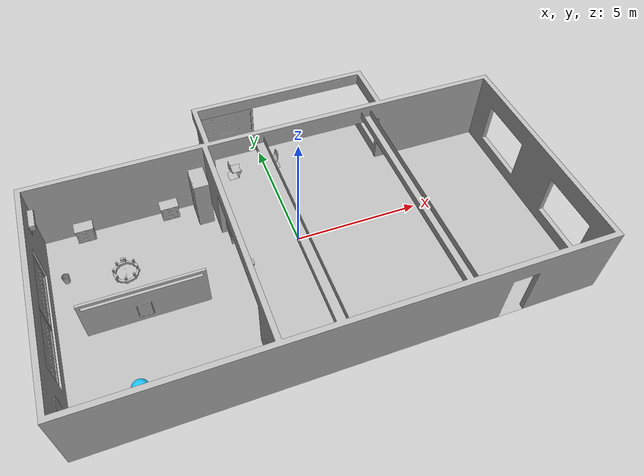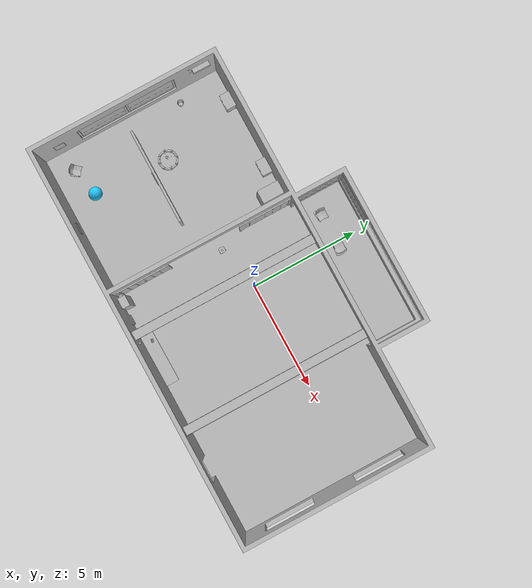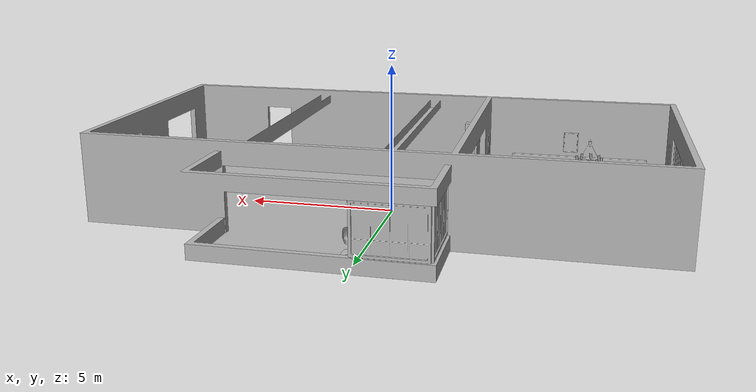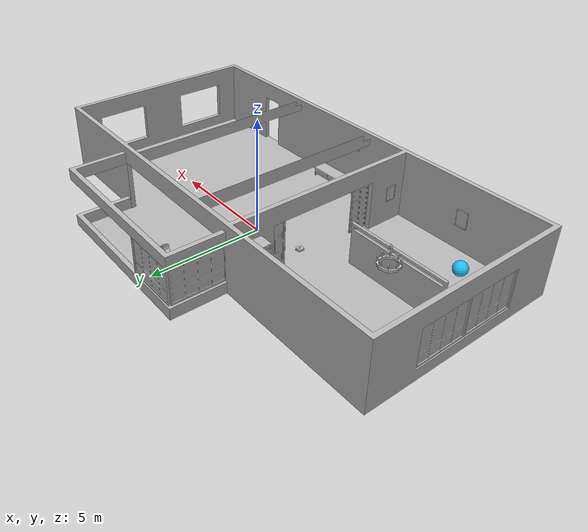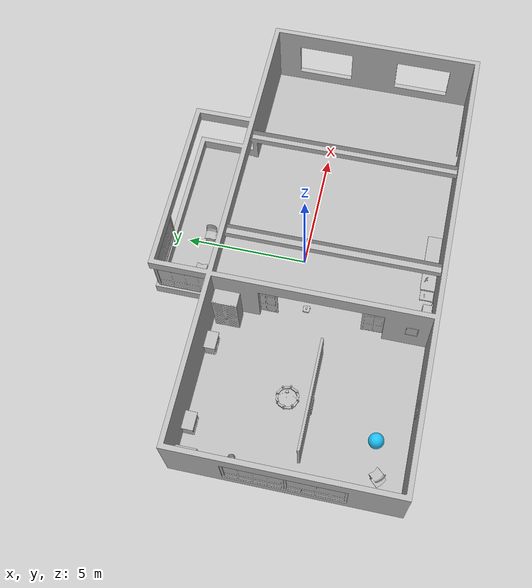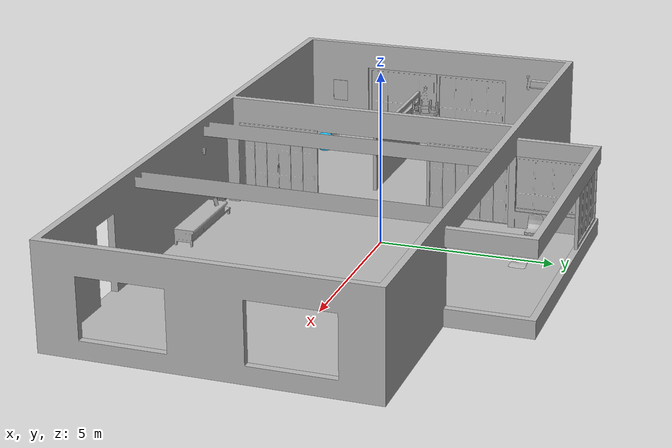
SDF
<sdf version="1.7">
 <world name="default">
  <model name="AirconditionerA_01_001">
   <static>1</static>
   <frame name="aws_robomaker_residential_AirconditionerA_01::__model__" attached_to="aws_robomaker_residential_AirconditionerA_01::link">
    <pose relative_to="__model__">0 0 0 0 -0 0</pose>
   </frame>
   <link name="aws_robomaker_residential_AirconditionerA_01::link">
    <inertial><mass>1</mass></inertial>
    <collision name="collision">
     <geometry>
      <mesh>
       <uri>model://aws_robomaker_residential_AirconditionerA_01/meshes/aws_AirconditionerA_01_collision.DAE</uri>
       <scale>1 1 1</scale>
      </mesh>
     </geometry>
    </collision>
    <visual name="visual">
     <geometry>
      <mesh>
       <uri>model://aws_robomaker_residential_AirconditionerA_01/meshes/aws_AirconditionerA_01_visual.DAE</uri>
      </mesh>
     </geometry>
     <meta><layer>1</layer></meta>
    </visual>
    <pose relative_to="aws_robomaker_residential_AirconditionerA_01::__model__">0 0 0 0 -0 0</pose>
   </link>
   <static>1</static>
   <pose>-9.19941 2.41123 2.08454 0 -0 0</pose>
  </model>
  <model name="AirconditionerB_01_001">
   <static>1</static>
   <frame name="aws_robomaker_residential_AirconditionerB_01::__model__" attached_to="aws_robomaker_residential_AirconditionerB_01::link">
    <pose relative_to="__model__">0 0 0 0 -0 0</pose>
   </frame>
   <link name="aws_robomaker_residential_AirconditionerB_01::link">
    <inertial><mass>1</mass></inertial>
    <collision name="collision">
     <geometry>
      <mesh>
       <uri>model://aws_robomaker_residential_AirconditionerB_01/meshes/aws_AirconditionerB_01_collision.DAE</uri>
       <scale>1 1 1</scale>
      </mesh>
     </geometry>
    </collision>
    <visual name="visual">
     <geometry>
      <mesh>
       <uri>model://aws_robomaker_residential_AirconditionerB_01/meshes/aws_AirconditionerB_01_visual.DAE</uri>
      </mesh>
     </geometry>
     <meta><layer>1</layer></meta>
    </visual>
    <pose relative_to="aws_robomaker_residential_AirconditionerB_01::__model__">0 0 0 0 -0 0</pose>
   </link>
   <pose>-2.00466 -5.22661 0.003485 0 -0 0</pose>
  </model>
  <model name="Ball_01_003">
   <static>1</static>
   <frame name="aws_robomaker_residential_Ball_01::__model__" attached_to="aws_robomaker_residential_Ball_01::link">
    <pose relative_to="__model__">0 0 0 0 -0 0</pose>
   </frame>
   <link name="aws_robomaker_residential_Ball_01::link">
    <inertial>
     <mass>0.12</mass>
     <inertia>
      <ixx>0.030752</ixx>
      <ixy>0</ixy>
      <ixz>0</ixz>
      <iyy>0.030752</iyy>
      <iyz>0</iyz>
      <izz>0.030752</izz>
     </inertia>
    </inertial>
    <collision name="collision">
     <geometry><sphere><radius>0.31</radius></sphere></geometry>
     <surface>
      <friction><ode><mu>0.85</mu><mu2>0.85</mu2></ode></friction>
      <contact><ode><kd>8500</kd><max_vel>5.1</max_vel></ode></contact>
     </surface>
    </collision>
    <visual name="visual">
     <geometry><sphere><radius>0.31</radius></sphere></geometry>
     <material><diffuse>0.12 0.76 0.97 1</diffuse><ambient>0.03 0.21 0.27 1</ambient></material>
     <meta><layer>1</layer></meta>
    </visual>
    <pose relative_to="aws_robomaker_residential_Ball_01::__model__">0 0 0 0 -0 0</pose>
   </link>
   <pose>-6.9455 -4.22174 0.318684 0 -0 0</pose>
  </model>
  <model name="NightStand_01_001">
   <static>1</static>
   <frame name="aws_robomaker_residential_NightStand_01::__model__" attached_to="aws_robomaker_residential_NightStand_01::link">
    <pose relative_to="__model__">0 0 0 0 -0 0</pose>
   </frame>
   <link name="aws_robomaker_residential_NightStand_01::link">
    <inertial>
     <mass>13.6</mass>
     <inertia><ixx>0.6165</ixx><ixy>0</ixy><ixz>0</ixz><iyy>1.29664</iyy><iyz>0</iyz><izz>0.7706</izz></inertia>
    </inertial>
    <collision name="collision">
     <geometry>
      <mesh>
       <uri>model://aws_robomaker_residential_NightStand_01/meshes/aws_NightStand_01_collision.DAE</uri>
       <scale>1 1 1</scale>
      </mesh>
     </geometry>
    </collision>
    <visual name="visual">
     <geometry>
      <mesh><uri>model://aws_robomaker_residential_NightStand_01/meshes/aws_NightStand_01_visual.DAE</uri></mesh>
     </geometry>
     <meta><layer>1</layer></meta>
    </visual>
    <pose relative_to="aws_robomaker_residential_NightStand_01::__model__">0 0 0 0 -0 0</pose>
   </link>
   <static>1</static>
   <pose>-7.72551 2.86042 0.005258 -2e-06 0 0</pose>
  </model>
  <model name="NightStand_01_002">
   <static>1</static>
   <frame name="aws_robomaker_residential_NightStand_01::__model__" attached_to="aws_robomaker_residential_NightStand_01::link">
    <pose relative_to="__model__">0 0 0 0 -0 0</pose>
   </frame>
   <link name="aws_robomaker_residential_NightStand_01::link">
    <inertial>
     <mass>13.6</mass>
     <inertia><ixx>0.6165</ixx><ixy>0</ixy><ixz>0</ixz><iyy>1.29664</iyy><iyz>0</iyz><izz>0.7706</izz></inertia>
    </inertial>
    <collision name="collision">
     <geometry>
      <mesh>
       <uri>model://aws_robomaker_residential_NightStand_01/meshes/aws_NightStand_01_collision.DAE</uri>
       <scale>1 1 1</scale>
      </mesh>
     </geometry>
    </collision>
    <visual name="visual">
     <geometry>
      <mesh><uri>model://aws_robomaker_residential_NightStand_01/meshes/aws_NightStand_01_visual.DAE</uri></mesh>
     </geometry>
     <meta><layer>1</layer></meta>
    </visual>
    <pose relative_to="aws_robomaker_residential_NightStand_01::__model__">0 0 0 0 -0 0</pose>
   </link>
   <static>1</static>
   <pose>-4.40734 2.86042 0.005256 0 2e-06 0</pose>
  </model>
  <model name="ChairD_01_001">
   <static>1</static>
   <frame name="aws_robomaker_residential_ChairD_01::__model__" attached_to="aws_robomaker_residential_ChairD_01::link">
    <pose relative_to="__model__">0 0 0 0 -0 0</pose>
   </frame>
   <link name="aws_robomaker_residential_ChairD_01::link">
    <inertial>
     <mass>4.5</mass>
     <inertia><ixy>0</ixy><ixz>0</ixz><iyz>0</iyz><ixx>0.217</ixx><iyy>0.217</iyy><izz>0.067</izz></inertia>
    </inertial>
    <collision name="collision">
     <geometry>
      <mesh>
       <uri>model://aws_robomaker_residential_ChairD_01/meshes/aws_ChairD_01_collision.DAE</uri>
       <scale>1 1 1</scale>
      </mesh>
     </geometry>
    </collision>
    <visual name="visual">
     <geometry>
      <mesh><uri>model://aws_robomaker_residential_ChairD_01/meshes/aws_ChairD_01_visual.DAE</uri></mesh>
     </geometry>
     <meta><layer>1</layer></meta>
    </visual>
    <pose relative_to="aws_robomaker_residential_ChairD_01::__model__">0 0 0 0 -0 0</pose>
   </link>
   <pose>-1.38078 4.10446 0 0 -0 0</pose>
  </model>
  <model name="ChairD_01_002">
   <static>1</static>
   <frame name="aws_robomaker_residential_ChairD_01::__model__" attached_to="aws_robomaker_residential_ChairD_01::link">
    <pose relative_to="__model__">0 0 0 0 -0 0</pose>
   </frame>
   <link name="aws_robomaker_residential_ChairD_01::link">
    <inertial>
     <mass>4.5</mass>
     <inertia><ixy>0</ixy><ixz>0</ixz><iyz>0</iyz><ixx>0.217</ixx><iyy>0.217</iyy><izz>0.067</izz></inertia>
    </inertial>
    <collision name="collision">
     <geometry>
      <mesh>
       <uri>model://aws_robomaker_residential_ChairD_01/meshes/aws_ChairD_01_collision.DAE</uri>
       <scale>1 1 1</scale>
      </mesh>
     </geometry>
    </collision>
    <visual name="visual">
     <geometry>
      <mesh><uri>model://aws_robomaker_residential_ChairD_01/meshes/aws_ChairD_01_visual.DAE</uri></mesh>
     </geometry>
     <meta><layer>1</layer></meta>
    </visual>
    <pose relative_to="aws_robomaker_residential_ChairD_01::__model__">0 0 0 0 -0 0</pose>
   </link>
   <pose>0.325214 4.10446 0 0 0 -3.13874</pose>
  </model>
  <model name="ChairD_01_003">
   <static>1</static>
   <frame name="aws_robomaker_residential_ChairD_01::__model__" attached_to="aws_robomaker_residential_ChairD_01::link">
    <pose relative_to="__model__">0 0 0 0 -0 0</pose>
   </frame>
   <link name="aws_robomaker_residential_ChairD_01::link">
    <inertial>
     <mass>4.5</mass>
     <inertia><ixy>0</ixy><ixz>0</ixz><iyz>0</iyz><ixx>0.217</ixx><iyy>0.217</iyy><izz>0.067</izz></inertia>
    </inertial>
    <collision name="collision">
     <geometry>
      <mesh>
       <uri>model://aws_robomaker_residential_ChairD_01/meshes/aws_ChairD_01_collision.DAE</uri>
       <scale>1 1 1</scale>
      </mesh>
     </geometry>
    </collision>
    <visual name="visual">
     <geometry>
      <mesh><uri>model://aws_robomaker_residential_ChairD_01/meshes/aws_ChairD_01_visual.DAE</uri></mesh>
     </geometry>
     <meta><layer>1</layer></meta>
    </visual>
    <pose relative_to="aws_robomaker_residential_ChairD_01::__model__">0 0 0 0 -0 0</pose>
   </link>
   <pose>-8.27078 -4.50446 0 0 -0 0.869673</pose>
  </model>
  <model name="Chandelier_01_002">
   <static>1</static>
   <frame name="aws_robomaker_residential_Chandelier_01::__model__" attached_to="aws_robomaker_residential_Chandelier_01::link">
    <pose relative_to="__model__">0 0 0 0 -0 0</pose>
   </frame>
   <link name="aws_robomaker_residential_Chandelier_01::link">
    <inertial><mass>1</mass></inertial>
    <collision name="collision">
     <geometry>
      <mesh>
       <uri>model://aws_robomaker_residential_Chandelier_01/meshes/aws_Chandelier_01_collision.DAE</uri>
       <scale>1 1 1</scale>
      </mesh>
     </geometry>
    </collision>
    <visual name="visual">
     <geometry>
      <mesh><uri>model://aws_robomaker_residential_Chandelier_01/meshes/aws_Chandelier_01_visual.DAE</uri></mesh>
     </geometry>
     <meta><layer>2</layer></meta>
    </visual>
    <pose relative_to="aws_robomaker_residential_Chandelier_01::__model__">0 0 0 0 -0 0</pose>
   </link>
   <static>1</static>
   <pose>-6.45106 -0.69204 1.81 0 -0 0</pose>
  </model>
  <model name="FoldingDoor_01_001">
   <static>1</static>
   <frame name="aws_robomaker_residential_FoldingDoor_01::__model__" attached_to="aws_robomaker_residential_FoldingDoor_01::link">
    <pose relative_to="__model__">0 0 0 0 -0 0</pose>
   </frame>
   <link name="aws_robomaker_residential_FoldingDoor_01::link">
    <inertial><mass>1</mass></inertial>
    <collision name="collision">
     <geometry>
      <mesh>
       <uri>model://aws_robomaker_residential_FoldingDoor_01/meshes/aws_FoldingDoor_01_collision.DAE</uri>
       <scale>1 1 1</scale>
      </mesh>
     </geometry>
    </collision>
    <visual name="visual">
     <geometry>
      <mesh><uri>model://aws_robomaker_residential_FoldingDoor_01/meshes/aws_FoldingDoor_01_visual.DAE</uri></mesh>
     </geometry>
     <meta><layer>2</layer></meta>
    </visual>
    <pose relative_to="aws_robomaker_residential_FoldingDoor_01::__model__">0 0 0 0 -0 0</pose>
   </link>
   <static>1</static>
   <pose>-2.4611 1.84422 0.041881 0 -0 0</pose>
  </model>
  <model name="FoldingDoor_01_002">
   <static>1</static>
   <frame name="aws_robomaker_residential_FoldingDoor_01::__model__" attached_to="aws_robomaker_residential_FoldingDoor_01::link">
    <pose relative_to="__model__">0 0 0 0 -0 0</pose>
   </frame>
   <link name="aws_robomaker_residential_FoldingDoor_01::link">
    <inertial><mass>1</mass></inertial>
    <collision name="collision">
     <geometry>
      <mesh>
       <uri>model://aws_robomaker_residential_FoldingDoor_01/meshes/aws_FoldingDoor_01_collision.DAE</uri>
       <scale>1 1 1</scale>
      </mesh>
     </geometry>
    </collision>
    <visual name="visual">
     <geometry>
      <mesh><uri>model://aws_robomaker_residential_FoldingDoor_01/meshes/aws_FoldingDoor_01_visual.DAE</uri></mesh>
     </geometry>
     <meta><layer>2</layer></meta>
    </visual>
    <pose relative_to="aws_robomaker_residential_FoldingDoor_01::__model__">0 0 0 0 -0 0</pose>
   </link>
   <static>1</static>
   <pose>-2.4611 -4.05332 0.041881 0 -0 0</pose>
  </model>
  <model name="HouseWallB_01_001">
   <static>1</static>
   <frame name="aws_robomaker_residential_HouseWallB_01::__model__" attached_to="aws_robomaker_residential_HouseWallB_01::link">
    <pose relative_to="__model__">0 0 0 0 -0 0</pose>
   </frame>
   <link name="aws_robomaker_residential_HouseWallB_01::link">
    <inertial><mass>1</mass></inertial>
    <collision name="collision">
     <geometry>
      <mesh>
       <uri>model://aws_robomaker_residential_HouseWallB_01/meshes/aws_HouseWallB_01_collision.DAE</uri>
       <scale>1 1 1</scale>
      </mesh>
     </geometry>
    </collision>
    <visual name="visual">
     <geometry>
      <mesh><uri>model://aws_robomaker_residential_HouseWallB_01/meshes/aws_HouseWallB_01_visual.DAE</uri></mesh>
     </geometry>
     <meta><layer>2</layer></meta>
    </visual>
    <pose relative_to="aws_robomaker_residential_HouseWallB_01::__model__">0 0 0 0 -0 0</pose>
   </link>
   <static>1</static>
  </model>
  <model name="FloorB_01_001">
   <static>1</static>
   <frame name="aws_robomaker_residential_FloorB_01::__model__" attached_to="aws_robomaker_residential_FloorB_01::link">
    <pose relative_to="__model__">0 0 0 0 -0 0</pose>
   </frame>
   <link name="aws_robomaker_residential_FloorB_01::link">
    <inertial><mass>100</mass></inertial>
    <collision name="collision">
     <geometry>
      <mesh>
       <uri>model://aws_robomaker_residential_FloorB_01/meshes/aws_FloorB_01_collision.DAE</uri>
       <scale>1 1 0.9</scale>
      </mesh>
     </geometry>
     <surface><friction><ode><mu>100</mu><mu2>50</mu2></ode></friction></surface>
    </collision>
    <visual name="visual">
     <geometry>
      <mesh><uri>model://aws_robomaker_residential_FloorB_01/meshes/aws_FloorB_01_visual.DAE</uri></mesh>
     </geometry>
     <meta><layer>1</layer></meta>
    </visual>
    <pose relative_to="aws_robomaker_residential_FloorB_01::__model__">0 0 0 0 -0 0</pose>
   </link>
   <static>1</static>
  </model>
  <model name="LightC_01_002">
   <static>1</static>
   <frame name="aws_robomaker_residential_LightC_01::__model__" attached_to="aws_robomaker_residential_LightC_01::link">
    <pose relative_to="__model__">0 0 0 0 -0 0</pose>
   </frame>
   <link name="aws_robomaker_residential_LightC_01::link">
    <inertial><mass>1</mass></inertial>
    <collision name="collision">
     <geometry>
      <mesh>
       <uri>model://aws_robomaker_residential_LightC_01/meshes/aws_LightC_01_collision.DAE</uri>
       <scale>1 1 1</scale>
      </mesh>
     </geometry>
    </collision>
    <visual name="visual">
     <geometry>
      <mesh><uri>model://aws_robomaker_residential_LightC_01/meshes/aws_LightC_01_visual.DAE</uri></mesh>
     </geometry>
     <meta><layer>2</layer></meta>
    </visual>
    <pose relative_to="aws_robomaker_residential_LightC_01::__model__">0 0 0 0 -0 0</pose>
   </link>
   <static>1</static>
   <pose>-0.138245 -5.44437 2 0 -0 0</pose>
  </model>
  <model name="PortraitA_01">
   <static>1</static>
   <frame name="aws_robomaker_residential_PortraitA_01::__model__" attached_to="aws_robomaker_residential_PortraitA_01::link">
    <pose relative_to="__model__">0 0 0 0 -0 0</pose>
   </frame>
   <link name="aws_robomaker_residential_PortraitA_01::link">
    <inertial><mass>1</mass></inertial>
    <collision name="collision">
     <geometry>
      <mesh>
       <uri>model://aws_robomaker_residential_PortraitA_01/meshes/aws_PortraitA_01_collision.DAE</uri>
       <scale>1 1 1</scale>
      </mesh>
     </geometry>
    </collision>
    <visual name="visual">
     <geometry>
      <mesh><uri>model://aws_robomaker_residential_PortraitA_01/meshes/aws_PortraitA_01_visual.DAE</uri></mesh>
     </geometry>
     <meta><layer>2</layer></meta>
    </visual>
    <pose relative_to="aws_robomaker_residential_PortraitA_01::__model__">0 0 0 0 -0 0</pose>
   </link>
   <static>1</static>
   <pose>-2.71236 -4.81754 1 0 -0 1.5668</pose>
  </model>
  <model name="PortraitB_01">
   <static>1</static>
   <frame name="aws_robomaker_residential_PortraitB_01::__model__" attached_to="aws_robomaker_residential_PortraitB_01::link">
    <pose relative_to="__model__">0 0 0 0 -0 0</pose>
   </frame>
   <link name="aws_robomaker_residential_PortraitB_01::link">
    <inertial><mass>1</mass></inertial>
    <collision name="collision">
     <geometry>
      <mesh>
       <uri>model://aws_robomaker_residential_PortraitB_01/meshes/aws_PortraitB_01_collision.DAE</uri>
       <scale>1 1 1</scale>
      </mesh>
     </geometry>
    </collision>
    <visual name="visual">
     <geometry>
      <mesh><uri>model://aws_robomaker_residential_PortraitB_01/meshes/aws_PortraitB_01_visual.DAE</uri></mesh>
     </geometry>
     <meta><layer>2</layer></meta>
    </visual>
    <pose relative_to="aws_robomaker_residential_PortraitB_01::__model__">0 0 0 0 -0 0</pose>
   </link>
   <static>1</static>
   <pose>-1.27968 -5.42963 0 -0.076901 0 -3.11672</pose>
  </model>
  <model name="PortraitC_01">
   <static>1</static>
   <frame name="aws_robomaker_residential_PortraitC_01::__model__" attached_to="aws_robomaker_residential_PortraitC_01::link">
    <pose relative_to="__model__">0 0 0 0 -0 0</pose>
   </frame>
   <link name="aws_robomaker_residential_PortraitC_01::link">
    <inertial><mass>1</mass></inertial>
    <collision name="collision">
     <geometry>
      <mesh>
       <uri>model://aws_robomaker_residential_PortraitC_01/meshes/aws_PortraitC_01_collision.DAE</uri>
       <scale>1 1 1</scale>
      </mesh>
     </geometry>
    </collision>
    <visual name="visual">
     <geometry>
      <mesh><uri>model://aws_robomaker_residential_PortraitC_01/meshes/aws_PortraitC_01_visual.DAE</uri></mesh>
     </geometry>
     <meta><layer>2</layer></meta>
    </visual>
    <pose relative_to="aws_robomaker_residential_PortraitC_01::__model__">0 0 0 0 -0 0</pose>
   </link>
   <static>1</static>
   <pose>-9.2949 -4.52608 1 0 -0 1.55473</pose>
  </model>
  <model name="PortraitE_01">
   <static>1</static>
   <frame name="aws_robomaker_residential_PortraitE_01::__model__" attached_to="aws_robomaker_residential_PortraitE_01::link">
    <pose relative_to="__model__">0 0 0 0 -0 0</pose>
   </frame>
   <link name="aws_robomaker_residential_PortraitE_01::link">
    <inertial><mass>1</mass></inertial>
    <collision name="collision">
     <geometry>
      <mesh>
       <uri>model://aws_robomaker_residential_PortraitE_01/meshes/aws_PortraitE_01_collision.DAE</uri>
       <scale>1 1 1</scale>
      </mesh>
     </geometry>
    </collision>
    <visual name="visual">
     <geometry>
      <mesh><uri>model://aws_robomaker_residential_PortraitE_01/meshes/aws_PortraitE_01_visual.DAE</uri></mesh>
     </geometry>
     <meta><layer>2</layer></meta>
    </visual>
    <pose relative_to="aws_robomaker_residential_PortraitE_01::__model__">0 0 0 0 -0 0</pose>
   </link>
   <static>1</static>
   <pose>-5.77309 -5.49247 1 0 -0 3.13263</pose>
  </model>
  <model name="PortraitE_02">
   <static>1</static>
   <frame name="aws_robomaker_residential_PortraitE_02::__model__" attached_to="aws_robomaker_residential_PortraitE_02::link">
    <pose relative_to="__model__">0 0 0 0 -0 0</pose>
   </frame>
   <link name="aws_robomaker_residential_PortraitE_02::link">
    <inertial><mass>1</mass></inertial>
    <collision name="collision">
     <geometry>
      <mesh>
       <uri>model://aws_robomaker_residential_PortraitE_02/meshes/aws_PortraitE_01_collision.DAE</uri>
       <scale>1 1 1</scale>
      </mesh>
     </geometry>
    </collision>
    <visual name="visual">
     <geometry>
      <mesh><uri>model://aws_robomaker_residential_PortraitE_02/meshes/aws_PortraitE_01_visual.DAE</uri></mesh>
     </geometry>
     <meta><layer>2</layer></meta>
    </visual>
    <pose relative_to="aws_robomaker_residential_PortraitE_02::__model__">0 0 0 0 -0 0</pose>
   </link>
   <static>1</static>
   <pose>-6.19302 -1.59021 0.3 0 -0 0.00429</pose>
  </model>
  <model name="DeskPortraitA_01">
   <static>1</static>
   <frame name="aws_robomaker_residential_DeskPortraitA_01::__model__" attached_to="aws_robomaker_residential_DeskPortraitA_01::link">
    <pose relative_to="__model__">0 0 0 0 -0 0</pose>
   </frame>
   <link name="aws_robomaker_residential_DeskPortraitA_01::link">
    <inertial>
     <mass>1</mass>
     <inertia><ixx>0.0835</ixx><ixy>0</ixy><ixz>0</ixz><iyy>0.16</iyy><iyz>0</iyz><izz>0.08347</izz></inertia>
    </inertial>
    <collision name="collision">
     <geometry>
      <mesh>
       <uri>model://aws_robomaker_residential_DeskPortraitA_01/meshes/aws_DeskPortraitA_01_collision.DAE</uri>
       <scale>1 1 1</scale>
      </mesh>
     </geometry>
    </collision>
    <visual name="visual">
     <geometry>
      <mesh>
       <uri>model://aws_robomaker_residential_DeskPortraitA_01/meshes/aws_DeskPortraitA_01_visual.DAE</uri>
      </mesh>
     </geometry>
     <meta><layer>1</layer></meta>
    </visual>
    <pose relative_to="aws_robomaker_residential_DeskPortraitA_01::__model__">0 0 0 0 -0 0</pose>
   </link>
   <pose>-0.036864 -5.11016 0.49866 0 -0 2.92778</pose>
  </model>
  <model name="DeskPortraitD_02">
   <static>1</static>
   <frame name="aws_robomaker_residential_DeskPortraitD_02::__model__" attached_to="aws_robomaker_residential_DeskPortraitD_02::link">
    <pose relative_to="__model__">0 0 0 0 -0 0</pose>
   </frame>
   <link name="aws_robomaker_residential_DeskPortraitD_02::link">
    <inertial>
     <mass>0.4</mass>
     <inertia><ixx>0.0616</ixx><ixy>0</ixy><ixz>0</ixz><iyy>0.1313</iyy><iyz>0</iyz><izz>0.0803</izz></inertia>
    </inertial>
    <collision name="collision">
     <geometry>
      <mesh>
       <uri>model://aws_robomaker_residential_DeskPortraitD_02/meshes/aws_DeskPortraitD_01_collision.DAE</uri>
       <scale>1 1 1</scale>
      </mesh>
     </geometry>
     <surface>
      <friction><ode><mu>0.7</mu><mu2>0.7</mu2></ode></friction>
      <contact><ode><kd>28500</kd></ode></contact>
     </surface>
    </collision>
    <visual name="visual">
     <geometry>
      <mesh>
       <uri>model://aws_robomaker_residential_DeskPortraitD_02/meshes/aws_DeskPortraitD_01_visual.DAE</uri>
      </mesh>
     </geometry>
     <meta><layer>1</layer></meta>
    </visual>
    <pose relative_to="aws_robomaker_residential_DeskPortraitD_02::__model__">0 0 0 0 -0 0</pose>
   </link>
   <pose>-0.589211 -5.10989 0.192145 -1.5e-05 -0.000174 -3.11254</pose>
  </model>
  <model name="Trash_01_002">
   <static>1</static>
   <frame name="aws_robomaker_residential_Trash_01::__model__" attached_to="aws_robomaker_residential_Trash_01::link">
    <pose relative_to="__model__">0 0 0 0 -0 0</pose>
   </frame>
   <link name="aws_robomaker_residential_Trash_01::link">
    <inertial>
     <mass>0.1</mass>
     <inertia><ixy>0</ixy><ixz>0</ixz><iyz>0</iyz><ixx>0.05288</ixx><iyy>0.05288</iyy><izz>0.09132</izz></inertia>
    </inertial>
    <collision name="collision">
     <geometry>
      <mesh>
       <uri>model://aws_robomaker_residential_Trash_01/meshes/aws_Trash_01_collision.DAE</uri>
       <scale>1 1 1</scale>
      </mesh>
     </geometry>
    </collision>
    <visual name="visual">
     <geometry>
      <mesh><uri>model://aws_robomaker_residential_Trash_01/meshes/aws_Trash_01_visual.DAE</uri></mesh>
     </geometry>
     <meta><layer>1</layer></meta>
    </visual>
    <pose relative_to="aws_robomaker_residential_Trash_01::__model__">0 0 0 0 -0 0</pose>
   </link>
   <pose>-8.70415 1.00058 0.011 0 -0 0</pose>
  </model>
  <model name="TVCabinet_01_001">
   <static>1</static>
   <frame name="aws_robomaker_residential_TVCabinet_01::__model__" attached_to="aws_robomaker_residential_TVCabinet_01::link">
    <pose relative_to="__model__">0 0 0 0 -0 0</pose>
   </frame>
   <link name="aws_robomaker_residential_TVCabinet_01::link">
    <inertial>
     <mass>59.2</mass>
     <inertia><ixx>30.4</ixx><ixy>0</ixy><ixz>0</ixz><iyy>2.56</iyy><iyz>0</iyz><izz>31.38</izz></inertia>
    </inertial>
    <collision name="collision">
     <geometry>
      <mesh>
       <uri>model://aws_robomaker_residential_TVCabinet_01/meshes/aws_TVCabinet_01_collision.DAE</uri>
       <scale>1 1 1</scale>
      </mesh>
     </geometry>
    </collision>
    <visual name="visual">
     <geometry>
      <mesh><uri>model://aws_robomaker_residential_TVCabinet_01/meshes/aws_TVCabinet_01_visual.DAE</uri></mesh>
     </geometry>
     <meta><layer>1</layer></meta>
    </visual>
    <pose relative_to="aws_robomaker_residential_TVCabinet_01::__model__">0 0 0 0 -0 0</pose>
   </link>
   <static>1</static>
   <pose>0.629509 -5.18358 -0.017049 0 -0 1.5792</pose>
  </model>
  <model name="RoomWall_01_001">
   <static>1</static>
   <frame name="aws_robomaker_residential_RoomWall_01::__model__" attached_to="aws_robomaker_residential_RoomWall_01::link">
    <pose relative_to="__model__">0 0 0 0 -0 0</pose>
   </frame>
   <link name="aws_robomaker_residential_RoomWall_01::link">
    <inertial><mass>100</mass></inertial>
    <collision name="collision">
     <geometry>
      <mesh>
       <uri>model://aws_robomaker_residential_RoomWall_01/meshes/aws_RoomWall_01_collision.DAE</uri>
       <scale>1 1 1</scale>
      </mesh>
     </geometry>
    </collision>
    <visual name="visual">
     <geometry>
      <mesh><uri>model://aws_robomaker_residential_RoomWall_01/meshes/aws_RoomWall_01_visual.DAE</uri></mesh>
     </geometry>
     <meta><layer>2</layer></meta>
    </visual>
    <pose relative_to="aws_robomaker_residential_RoomWall_01::__model__">0 0 0 0 -0 0</pose>
   </link>
   <static>1</static>
   <pose>-6.09755 -1.49618 0.028124 0 -0 0</pose>
  </model>
  <model name="Wardrobe_01_001">
   <static>1</static>
   <frame name="aws_robomaker_residential_Wardrobe_01::__model__" attached_to="aws_robomaker_residential_Wardrobe_01::link">
    <pose relative_to="__model__">0 0 0 0 -0 0</pose>
   </frame>
   <link name="aws_robomaker_residential_Wardrobe_01::link">
    <inertial><mass>51.7</mass></inertial>
    <collision name="collision">
     <geometry>
      <mesh>
       <uri>model://aws_robomaker_residential_Wardrobe_01/meshes/aws_Wardrobe_01_collision.DAE</uri>
       <scale>1 1 1</scale>
      </mesh>
     </geometry>
    </collision>
    <visual name="visual">
     <geometry>
      <mesh><uri>model://aws_robomaker_residential_Wardrobe_01/meshes/aws_Wardrobe_01_visual.DAE</uri></mesh>
     </geometry>
     <meta><layer>1</layer></meta>
    </visual>
    <pose relative_to="aws_robomaker_residential_Wardrobe_01::__model__">0 0 0 0 -0 0</pose>
   </link>
   <static>1</static>
   <pose>-3.14671 2.4762 0.000704 0 0 -1.56967</pose>
  </model>
  <model name="RoomWindow_01_001">
   <static>1</static>
   <frame name="aws_robomaker_residential_RoomWindow_01::__model__" attached_to="aws_robomaker_residential_RoomWindow_01::link">
    <pose relative_to="__model__">0 0 0 0 -0 0</pose>
   </frame>
   <link name="aws_robomaker_residential_RoomWindow_01::link">
    <inertial><mass>1</mass></inertial>
    <collision name="collision">
     <geometry>
      <mesh>
       <uri>model://aws_robomaker_residential_RoomWindow_01/meshes/aws_RoomWindow_01_collision.DAE</uri>
       <scale>1 1 1</scale>
      </mesh>
     </geometry>
    </collision>
    <visual name="visual">
     <geometry>
      <mesh><uri>model://aws_robomaker_residential_RoomWindow_01/meshes/aws_RoomWindow_01_visual.DAE</uri></mesh>
     </geometry>
     <meta><layer>2</layer></meta>
    </visual>
    <pose relative_to="aws_robomaker_residential_RoomWindow_01::__model__">0 0 0 0 -0 0</pose>
   </link>
   <static>1</static>
   <pose>-9.4186 -0.026285 0.502739 0 -0 0</pose>
  </model>
  <model name="RoomWindow_01_002">
   <static>1</static>
   <frame name="aws_robomaker_residential_RoomWindow_01::__model__" attached_to="aws_robomaker_residential_RoomWindow_01::link">
    <pose relative_to="__model__">0 0 0 0 -0 0</pose>
   </frame>
   <link name="aws_robomaker_residential_RoomWindow_01::link">
    <inertial><mass>1</mass></inertial>
    <collision name="collision">
     <geometry>
      <mesh>
       <uri>model://aws_robomaker_residential_RoomWindow_01/meshes/aws_RoomWindow_01_collision.DAE</uri>
       <scale>1 1 1</scale>
      </mesh>
     </geometry>
    </collision>
    <visual name="visual">
     <geometry>
      <mesh><uri>model://aws_robomaker_residential_RoomWindow_01/meshes/aws_RoomWindow_01_visual.DAE</uri></mesh>
     </geometry>
     <meta><layer>2</layer></meta>
    </visual>
    <pose relative_to="aws_robomaker_residential_RoomWindow_01::__model__">0 0 0 0 -0 0</pose>
   </link>
   <static>1</static>
   <pose>-9.4186 -2.37409 0.502739 0 -0 0</pose>
  </model>
  <model name="RoomWindow_01_008">
   <static>1</static>
   <frame name="aws_robomaker_residential_RoomWindow_01::__model__" attached_to="aws_robomaker_residential_RoomWindow_01::link">
    <pose relative_to="__model__">0 0 0 0 -0 0</pose>
   </frame>
   <link name="aws_robomaker_residential_RoomWindow_01::link">
    <inertial><mass>1</mass></inertial>
    <collision name="collision">
     <geometry>
      <mesh>
       <uri>model://aws_robomaker_residential_RoomWindow_01/meshes/aws_RoomWindow_01_collision.DAE</uri>
       <scale>1 1 1</scale>
      </mesh>
     </geometry>
    </collision>
    <visual name="visual">
     <geometry>
      <mesh><uri>model://aws_robomaker_residential_RoomWindow_01/meshes/aws_RoomWindow_01_visual.DAE</uri></mesh>
     </geometry>
     <meta><layer>2</layer></meta>
    </visual>
    <pose relative_to="aws_robomaker_residential_RoomWindow_01::__model__">0 0 0 0 -0 0</pose>
   </link>
   <static>1</static>
   <pose>-1.19934 5.60069 0.502739 0 0 -1.56627</pose>
  </model>
  <model name="RoomWindow_01_009">
   <static>1</static>
   <frame name="aws_robomaker_residential_RoomWindow_01::__model__" attached_to="aws_robomaker_residential_RoomWindow_01::link">
    <pose relative_to="__model__">0 0 0 0 -0 0</pose>
   </frame>
   <link name="aws_robomaker_residential_RoomWindow_01::link">
    <inertial><mass>1</mass></inertial>
    <collision name="collision">
     <geometry>
      <mesh>
       <uri>model://aws_robomaker_residential_RoomWindow_01/meshes/aws_RoomWindow_01_collision.DAE</uri>
       <scale>1 1 1</scale>
      </mesh>
     </geometry>
    </collision>
    <visual name="visual">
     <geometry>
      <mesh><uri>model://aws_robomaker_residential_RoomWindow_01/meshes/aws_RoomWindow_01_visual.DAE</uri></mesh>
     </geometry>
     <meta><layer>2</layer></meta>
    </visual>
    <pose relative_to="aws_robomaker_residential_RoomWindow_01::__model__">0 0 0 0 -0 0</pose>
   </link>
   <static>1</static>
   <pose>-2.39662 4.38761 0.502739 0 -0 0</pose>
  </model>
  <model name="waffle_pi">
   <pose>-2.03293 -0.500004 0.007894 7e-06 0.006289 0.00117</pose>
   <link name="base_footprint">
    <inertial>
     <inertia><ixx>1</ixx><ixy>0</ixy><ixz>0</ixz><iyy>1</iyy><iyz>0</iyz><izz>1</izz></inertia>
     <mass>1</mass>
    </inertial>
   </link>
   <link name="base_link">
    <inertial>
     <pose>-0.064 0 0.048 0 -0 0</pose>
     <inertia>
      <ixx>0.0421114</ixx>
      <ixy>0</ixy>
      <ixz>0</ixz>
      <iyy>0.0421114</iyy>
      <iyz>0</iyz>
      <izz>0.0752549</izz>
     </inertia>
     <mass>1.37291</mass>
    </inertial>
    <collision name="base_collision">
     <pose>-0.064 0 0.048 0 -0 0</pose>
     <geometry><box><size>0.265 0.265 0.089</size></box></geometry>
    </collision>
    <visual name="base_visual">
     <pose>-0.064 0 0 0 -0 0</pose>
     <geometry>
      <mesh><uri>model://turtlebot3_common/meshes/waffle_pi_base.dae</uri><scale>0.001 0.001 0.001</scale></mesh>
     </geometry>
    </visual>
   </link>
   <link name="imu_link">
    <sensor name="tb3_imu" type="imu">
     <always_on>1</always_on>
     <update_rate>200</update_rate>
     <imu>
      <angular_velocity>
       <x><noise type="gaussian"><mean>0</mean><stddev>0.0002</stddev></noise></x>
       <y><noise type="gaussian"><mean>0</mean><stddev>0.0002</stddev></noise></y>
       <z><noise type="gaussian"><mean>0</mean><stddev>0.0002</stddev></noise></z>
      </angular_velocity>
      <linear_acceleration>
       <x><noise type="gaussian"><mean>0</mean><stddev>0.017</stddev></noise></x>
       <y><noise type="gaussian"><mean>0</mean><stddev>0.017</stddev></noise></y>
       <z><noise type="gaussian"><mean>0</mean><stddev>0.017</stddev></noise></z>
      </linear_acceleration>
     </imu>
     <plugin name="turtlebot3_imu" filename="libgazebo_ros_imu_sensor.so">
      <ros><remapping>~/out:=imu</remapping></ros>
     </plugin>
    </sensor>
    <inertial>
     <inertia><ixx>1</ixx><ixy>0</ixy><ixz>0</ixz><iyy>1</iyy><iyz>0</iyz><izz>1</izz></inertia>
     <mass>1</mass>
    </inertial>
   </link>
   <link name="base_scan">
    <inertial>
     <pose>-0.052 0 0.111 0 -0 0</pose>
     <inertia><ixx>0.001</ixx><ixy>0</ixy><ixz>0</ixz><iyy>0.001</iyy><iyz>0</iyz><izz>0.001</izz></inertia>
     <mass>0.114</mass>
    </inertial>
    <collision name="lidar_sensor_collision">
     <pose>-0.052 0 0.111 0 -0 0</pose>
     <geometry><cylinder><radius>0.0508</radius><length>0.055</length></cylinder></geometry>
    </collision>
    <visual name="lidar_sensor_visual">
     <pose>-0.064 0 0.121 0 -0 0</pose>
     <geometry>
      <mesh><uri>model://turtlebot3_common/meshes/lds.dae</uri><scale>0.001 0.001 0.001</scale></mesh>
     </geometry>
    </visual>
    <sensor name="hls_lfcd_lds" type="ray">
     <always_on>1</always_on>
     <visualize>1</visualize>
     <pose>-0.064 0 0.121 0 -0 0</pose>
     <update_rate>5</update_rate>
     <ray>
      <scan>
       <horizontal>
        <samples>360</samples>
        <resolution>1</resolution>
        <min_angle>0</min_angle>
        <max_angle>6.28</max_angle>
       </horizontal>
       <vertical><samples>1</samples><min_angle>0</min_angle><max_angle>0</max_angle></vertical>
      </scan>
      <range><min>0.12</min><max>3.5</max><resolution>0.015</resolution></range>
      <noise><type>gaussian</type><mean>0</mean><stddev>0.01</stddev></noise>
     </ray>
     <plugin name="turtlebot3_laserscan" filename="libgazebo_ros_ray_sensor.so">
      <ros><remapping>~/out:=scan</remapping></ros>
      <output_type>sensor_msgs/LaserScan</output_type>
      <frame_name>base_scan</frame_name>
     </plugin>
    </sensor>
   </link>
   <link name="wheel_left_link">
    <inertial>
     <pose>0 0.144 0.023 -1.57 0 0</pose>
     <inertia>
      <ixx>0.00181582</ixx>
      <ixy>-9.3392e-12</ixy>
      <ixz>1.04909e-11</ixz>
      <iyy>0.00329221</iyy>
      <iyz>5.75694e-11</iyz>
      <izz>0.00181582</izz>
     </inertia>
     <mass>0.0284989</mass>
    </inertial>
    <collision name="wheel_left_collision">
     <pose>0 0.144 0.023 -1.57 0 0</pose>
     <geometry><cylinder><radius>0.033</radius><length>0.018</length></cylinder></geometry>
     <surface>
      <friction>
       <ode><mu>100000</mu><mu2>100000</mu2><fdir1>0 0 0</fdir1><slip1>0</slip1><slip2>0</slip2></ode>
      </friction>
      <contact>
       <ode>
        <soft_cfm>0</soft_cfm>
        <soft_erp>0.2</soft_erp>
        <kp>100000</kp>
        <kd>1</kd>
        <max_vel>0.01</max_vel>
        <min_depth>0.001</min_depth>
       </ode>
      </contact>
     </surface>
    </collision>
    <visual name="wheel_left_visual">
     <pose>0 0.144 0.023 0 -0 0</pose>
     <geometry>
      <mesh><uri>model://turtlebot3_common/meshes/tire.dae</uri><scale>0.001 0.001 0.001</scale></mesh>
     </geometry>
    </visual>
   </link>
   <link name="wheel_right_link">
    <inertial>
     <pose>0 -0.144 0.023 -1.57 0 0</pose>
     <inertia>
      <ixx>0.00181582</ixx>
      <ixy>-9.3392e-12</ixy>
      <ixz>1.04909e-11</ixz>
      <iyy>0.00329221</iyy>
      <iyz>5.75694e-11</iyz>
      <izz>0.00181582</izz>
     </inertia>
     <mass>0.0284989</mass>
    </inertial>
    <collision name="wheel_right_collision">
     <pose>0 -0.144 0.023 -1.57 0 0</pose>
     <geometry><cylinder><radius>0.033</radius><length>0.018</length></cylinder></geometry>
     <surface>
      <friction>
       <ode><mu>100000</mu><mu2>100000</mu2><fdir1>0 0 0</fdir1><slip1>0</slip1><slip2>0</slip2></ode>
      </friction>
      <contact>
       <ode>
        <soft_cfm>0</soft_cfm>
        <soft_erp>0.2</soft_erp>
        <kp>100000</kp>
        <kd>1</kd>
        <max_vel>0.01</max_vel>
        <min_depth>0.001</min_depth>
       </ode>
      </contact>
     </surface>
    </collision>
    <visual name="wheel_right_visual">
     <pose>0 -0.144 0.023 0 -0 0</pose>
     <geometry>
      <mesh><uri>model://turtlebot3_common/meshes/tire.dae</uri><scale>0.001 0.001 0.001</scale></mesh>
     </geometry>
    </visual>
   </link>
   <link name="caster_back_right_link">
    <pose>-0.177 -0.064 -0.004 -1.57 0 0</pose>
    <inertial>
     <mass>0.001</mass>
     <inertia><ixx>1e-05</ixx><ixy>0</ixy><ixz>0</ixz><iyy>1e-05</iyy><iyz>0</iyz><izz>1e-05</izz></inertia>
    </inertial>
    <collision name="collision">
     <geometry><sphere><radius>0.005</radius></sphere></geometry>
     <surface>
      <contact>
       <ode>
        <soft_cfm>0</soft_cfm>
        <soft_erp>0.2</soft_erp>
        <kp>100000</kp>
        <kd>1</kd>
        <max_vel>0.01</max_vel>
        <min_depth>0.001</min_depth>
       </ode>
      </contact>
     </surface>
    </collision>
   </link>
   <link name="caster_back_left_link">
    <pose>-0.177 0.064 -0.004 -1.57 0 0</pose>
    <inertial>
     <mass>0.001</mass>
     <inertia><ixx>1e-05</ixx><ixy>0</ixy><ixz>0</ixz><iyy>1e-05</iyy><iyz>0</iyz><izz>1e-05</izz></inertia>
    </inertial>
    <collision name="collision">
     <geometry><sphere><radius>0.005</radius></sphere></geometry>
     <surface>
      <contact>
       <ode>
        <soft_cfm>0</soft_cfm>
        <soft_erp>0.2</soft_erp>
        <kp>100000</kp>
        <kd>1</kd>
        <max_vel>0.01</max_vel>
        <min_depth>0.001</min_depth>
       </ode>
      </contact>
     </surface>
    </collision>
   </link>
   <link name="camera_link">
    <inertial>
     <inertia><ixx>1</ixx><ixy>0</ixy><ixz>0</ixz><iyy>1</iyy><iyz>0</iyz><izz>1</izz></inertia>
     <mass>1</mass>
    </inertial>
   </link>
   <link name="camera_rgb_optical_frame">
    <inertial>
     <pose>0.076 0 0.093 0 -0 0</pose>
     <inertia><ixx>0.001</ixx><ixy>0</ixy><ixz>0</ixz><iyy>0.001</iyy><iyz>0</iyz><izz>0.001</izz></inertia>
     <mass>0.035</mass>
    </inertial>
    <pose>0.076 0 0.093 0 -0 0</pose>
    <sensor name="camera" type="camera">
     <always_on>1</always_on>
     <visualize>1</visualize>
     <update_rate>30</update_rate>
     <camera name="picam">
      <horizontal_fov>1.0856</horizontal_fov>
      <image><width>640</width><height>480</height><format>R8G8B8</format></image>
      <clip><near>0.03</near><far>100</far></clip>
      <noise><type>gaussian</type><mean>0</mean><stddev>0.007</stddev></noise>
     </camera>
     <plugin name="camera_driver" filename="libgazebo_ros_camera.so"/>
    </sensor>
   </link>
   <joint name="base_joint" type="fixed">
    <parent>base_footprint</parent>
    <child>base_link</child>
    <pose>0 0 0.01 0 -0 0</pose>
   </joint>
   <joint name="wheel_left_joint" type="revolute">
    <parent>base_link</parent>
    <child>wheel_left_link</child>
    <pose>0 0.144 0.023 -1.57 0 0</pose>
    <axis>
     <xyz>0 0 1</xyz>
     <limit><lower>-1e+16</lower><upper>1e+16</upper></limit>
     <dynamics><spring_reference>0</spring_reference><spring_stiffness>0</spring_stiffness></dynamics>
    </axis>
   </joint>
   <joint name="wheel_right_joint" type="revolute">
    <parent>base_link</parent>
    <child>wheel_right_link</child>
    <pose>0 -0.144 0.023 -1.57 0 0</pose>
    <axis>
     <xyz>0 0 1</xyz>
     <limit><lower>-1e+16</lower><upper>1e+16</upper></limit>
     <dynamics><spring_reference>0</spring_reference><spring_stiffness>0</spring_stiffness></dynamics>
    </axis>
   </joint>
   <joint name="caster_back_right_joint" type="ball">
    <parent>base_link</parent>
    <child>caster_back_right_link</child>
   </joint>
   <joint name="caster_back_left_joint" type="ball">
    <parent>base_link</parent>
    <child>caster_back_left_link</child>
   </joint>
   <joint name="imu_joint" type="fixed">
    <parent>base_link</parent>
    <child>imu_link</child>
    <pose>-0.032 0 0.068 0 -0 0</pose>
    <axis><xyz>0 0 1</xyz><limit><lower>-1e+16</lower><upper>1e+16</upper></limit></axis>
   </joint>
   <joint name="lidar_joint" type="fixed">
    <parent>base_link</parent>
    <child>base_scan</child>
    <pose>-0.064 0 0.121 0 -0 0</pose>
    <axis><xyz>0 0 1</xyz><limit><lower>-1e+16</lower><upper>1e+16</upper></limit></axis>
   </joint>
   <joint name="camera_joint" type="fixed">
    <parent>base_link</parent>
    <child>camera_link</child>
    <pose>0.073 -0.011 0.084 0 -0 0</pose>
    <axis><xyz>0 0 1</xyz><limit><lower>-1e+16</lower><upper>1e+16</upper></limit></axis>
   </joint>
   <joint name="camera_rgb_joint" type="fixed">
    <parent>camera_link</parent>
    <child>camera_rgb_optical_frame</child>
    <pose>0.003 0.011 0.009 0 -0 0</pose>
    <axis><xyz>0 0 1</xyz><limit><lower>-1e+16</lower><upper>1e+16</upper></limit></axis>
   </joint>
   <plugin name="turtlebot3_diff_drive" filename="libgazebo_ros_diff_drive.so">
    <update_rate>30</update_rate>
    <left_joint>wheel_left_joint</left_joint>
    <right_joint>wheel_right_joint</right_joint>
    <wheel_separation>0.287</wheel_separation>
    <wheel_diameter>0.066</wheel_diameter>
    <max_wheel_torque>20</max_wheel_torque>
    <max_wheel_acceleration>1.0</max_wheel_acceleration>
    <command_topic>cmd_vel</command_topic>
    <publish_odom>1</publish_odom>
    <publish_odom_tf>1</publish_odom_tf>
    <publish_wheel_tf>0</publish_wheel_tf>
    <odometry_topic>odom</odometry_topic>
    <odometry_frame>odom</odometry_frame>
    <robot_base_frame>base_footprint</robot_base_frame>
   </plugin>
   <plugin name="turtlebot3_joint_state" filename="libgazebo_ros_joint_state_publisher.so">
    <ros><remapping>~/out:=joint_states</remapping></ros>
    <update_rate>30</update_rate>
    <joint_name>wheel_left_joint</joint_name>
    <joint_name>wheel_right_joint</joint_name>
   </plugin>
  </model>
 </world>
</sdf>
